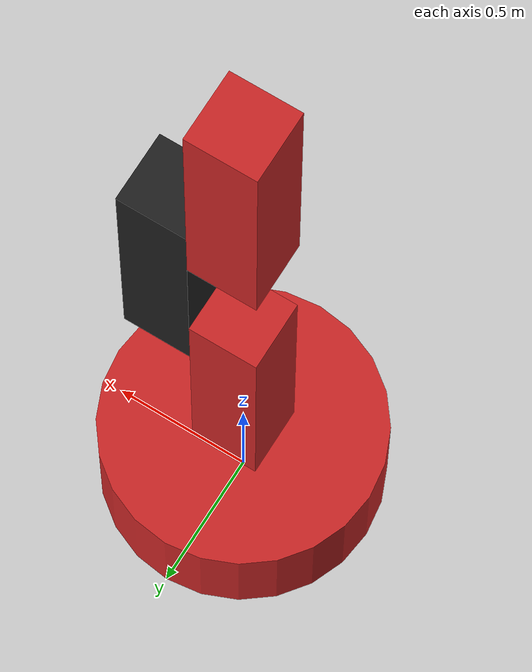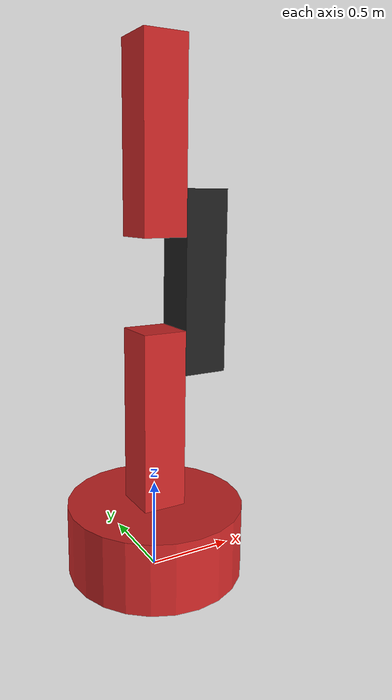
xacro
<?xml version="1.0"?>
<robot xmlns:xacro="http://www.ros.org/wiki/xacro">

	<xacro:include filename="inertial_macros.xacro"/>

	<link name="world">
		<origin xyz="0 0 0"/>
	</link>

	<gazebo reference="world">
		<static>true</static>
	</gazebo>

	<!-- STAND_LINK -->
	<joint name="stand_joint" type="fixed">
		<parent link="world"/>
		<child link="stand_link"/>
		<origin xyz="0 0 0"/>
	</joint>

	<link name="stand_link">
		<visual>
			<origin xyz="0 0 0.2"/>
			<geometry>
				<cylinder radius="0.5" length="0.4"/>
			</geometry>
		</visual>

		<collision>
			<origin xyz="0 0 0.2"/>
			<geometry>
				<cylinder radius="0.5" length="0.4"/>
			</geometry>
		</collision>

		<xacro:inertial_cylinder mass="100" length="0.4" radius="0.5">
            <origin xyz="0 0 0.2" rpy="0 0 0"/>
        </xacro:inertial_cylinder>
	</link>

	<gazebo reference="stand_link">
		<material>Gazebo/Red</material>
		<mu1 value="10"/>
		<mu2 value="10"/>
	</gazebo>

	<!-- AX1_LINK -->
	<joint name="ax1_joint" type="revolute">
		<parent link="stand_link"/>
		<child link="ax1_link"/>
		<limit effort="10" velocity="1" upper="${pi*2}" lower="${-pi*2}"/>
		<axis xyz="0 0 1"/>
		<origin xyz="0 0 0.4"/>
		<dynamics damping="10.0" friction="10.0"/>
	</joint>

	<link name="ax1_link">
		<visual>
			<origin xyz="0 0 0.5"/>
			<geometry>
				<box size="0.25 0.25 1"/>
			</geometry>
		</visual>

		<collision>
			<origin xyz="0 0 0.5"/>
			<geometry>
				<box size="0.25 0.25 1"/>
			</geometry>
		</collision>

		<xacro:inertial_box mass="1" x="0.25" y="0.25" z="1">
            <origin xyz="0 0 0.5" rpy="0 0 0"/>
        </xacro:inertial_box>
	</link>

	<gazebo reference="ax1_link">
		<material>Gazebo/Red</material>
		<mu1 value="10"/>
		<mu2 value="10"/>
	</gazebo>

	<!-- AX2_LINK -->
	<joint name="ax2_joint" type="revolute">
		<parent link="ax1_link"/>
		<child link="ax2_link"/>
		<limit effort="10" velocity="1" upper="${pi/2}" lower="${-pi/2}"/>
		<origin xyz="0 0 0.875"/>
		<axis xyz="1 0 0"/>
		<dynamics damping="10.0" friction="10.0"/>
	</joint>

	<link name="ax2_link">
		<visual>
			<origin xyz="0.25 0 0.375"/>
			<geometry>
				<box size="0.25 0.25 1"/>
			</geometry>
		</visual>

		<collision>
			<origin xyz="0.25 0 0.375"/>
			<geometry>
				<box size="0.25 0.25 1"/>
			</geometry>
		</collision>

		<xacro:inertial_box mass="1" x="0.25" y="0.25" z="1">
            <origin xyz="0.25 0 0.375" rpy="0 0 0"/>
        </xacro:inertial_box>
	</link>

	<gazebo reference="ax2_link">
		<material>Gazebo/Black</material>
		<mu1 value="10"/>
		<mu2 value="10"/>
	</gazebo>

	<!-- AX3_LINK -->
	<joint name="ax3_joint" type="revolute">
		<parent link="ax2_link"/>
		<child link="ax3_link"/>
		<limit effort="10" velocity="1" upper="${pi/2}" lower="${-pi/2}"/>
		<origin xyz="0 0 0.75"/>
		<axis xyz="1 0 0"/>
		<dynamics damping="10.0" friction="10.0"/>
	</joint>

	<link name="ax3_link">
		<visual>
			<origin xyz="0 0 0.375"/>
			<geometry>
				<box size="0.25 0.25 1"/>
			</geometry>
		</visual>

		<collision>
			<origin xyz="0 0 0.375"/>
			<geometry>
				<box size="0.25 0.25 1"/>
			</geometry>
		</collision>

		<xacro:inertial_box mass="1" x="0.25" y="0.25" z="1">
            <origin xyz="0 0 0.375" rpy="0 0 0"/>
        </xacro:inertial_box>
	</link>

	<gazebo reference="ax3_link">
		<material>Gazebo/Red</material>
		<mu1 value="10"/>
		<mu2 value="10"/>
	</gazebo>

	<ros2_control name="GazeboSystem" type="system">
    	<hardware>
      		<plugin>gazebo_ros2_control/GazeboSystem</plugin>
    	</hardware>

		<joint name="ax1_joint">
      		<command_interface name="position">
        		<param name="min">${-pi*2}</param>
        		<param name="max">${pi*2}</param>
      		</command_interface>
      		<state_interface name="position">
				<param name="initial_value">${0}</param>
			</state_interface>
      		<state_interface name="velocity"/>
    	</joint>

    	<joint name="ax2_joint">
      		<command_interface name="position">
        		<param name="min">${-pi/2}</param>
        		<param name="max">${pi/2}</param>
      		</command_interface>
      		<state_interface name="position">
				<param name="initial_value">${0}</param>
			</state_interface>
      		<state_interface name="velocity"/>
    	</joint>

		<joint name="ax3_joint">
      		<command_interface name="position">
        		<param name="min">${-pi/2}</param>
        		<param name="max">${pi/2}</param>
      		</command_interface>
      		<state_interface name="position">
				<param name="initial_value">${0}</param>
			</state_interface>
      		<state_interface name="velocity"/>
    	</joint>
  	</ros2_control>

</robot>

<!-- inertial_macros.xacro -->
<robot xmlns:xacro="http://www.ros.org/wiki/xacro" >

    <xacro:macro name="inertial_sphere" params="mass radius *origin">
        <inertial>
            <xacro:insert_block name="origin"/>
            <mass value="${mass}" />
            <inertia ixx="${(2/5) * mass * (radius*radius)}" ixy="0.0" ixz="0.0"
                    iyy="${(2/5) * mass * (radius*radius)}" iyz="0.0"
                    izz="${(2/5) * mass * (radius*radius)}" />
        </inertial>
    </xacro:macro>

    <xacro:macro name="inertial_box" params="mass x y z *origin">
        <inertial>
            <xacro:insert_block name="origin"/>
            <mass value="${mass}" />
            <inertia ixx="${(1/12) * mass * (y*y+z*z)}" ixy="0.0" ixz="0.0"
                    iyy="${(1/12) * mass * (x*x+z*z)}" iyz="0.0"
                    izz="${(1/12) * mass * (x*x+y*y)}" />
        </inertial>
    </xacro:macro>

    <xacro:macro name="inertial_cylinder" params="mass length radius *origin">
        <inertial>
            <xacro:insert_block name="origin"/>
            <mass value="${mass}" />
            <inertia ixx="${(1/12) * mass * (3*radius*radius + length*length)}" ixy="0.0" ixz="0.0"
                    iyy="${(1/12) * mass * (3*radius*radius + length*length)}" iyz="0.0"
                    izz="${(1/2) * mass * (radius*radius)}" />
        </inertial>
    </xacro:macro>

</robot>
